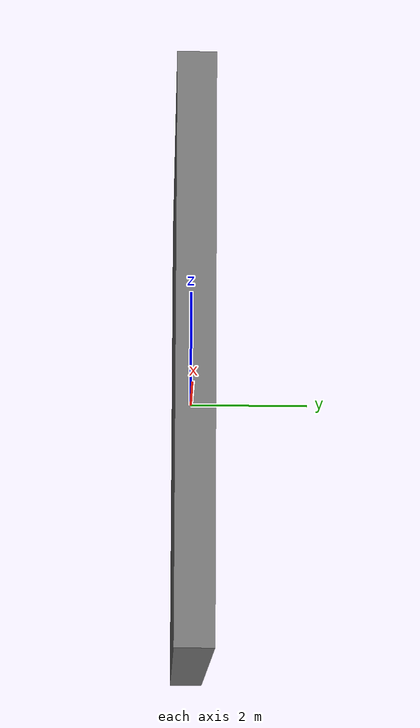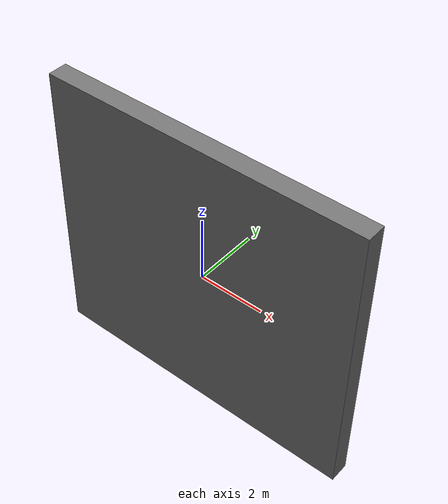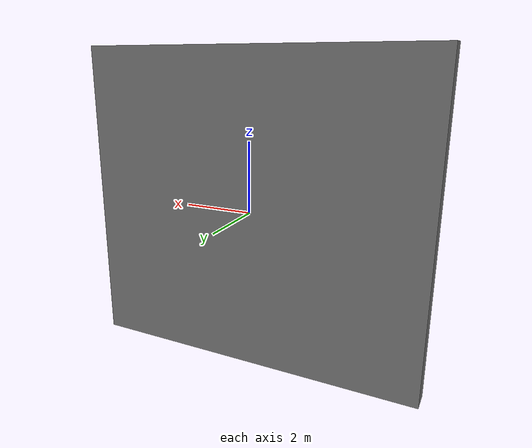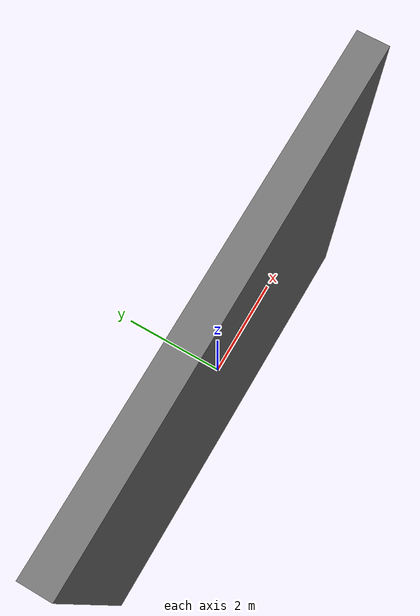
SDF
<?xml version="1.0"?>
<sdf version="1.7">
  <model name="occlusion_wall">
    <static>true</static>
    <link name="wall">
      <visual name="visual">
        <geometry>
          <box>
            <size>10.0 0.6 9.0</size>
          </box>
        </geometry>
        <material>
          <ambient>0.45 0.45 0.45 1</ambient>
          <diffuse>0.45 0.45 0.45 1</diffuse>
        </material>
      </visual>
      <collision name="collision">
        <geometry>
          <box>
            <size>10.0 0.6 9.0</size>
          </box>
        </geometry>
      </collision>
    </link>
  </model>
</sdf>
